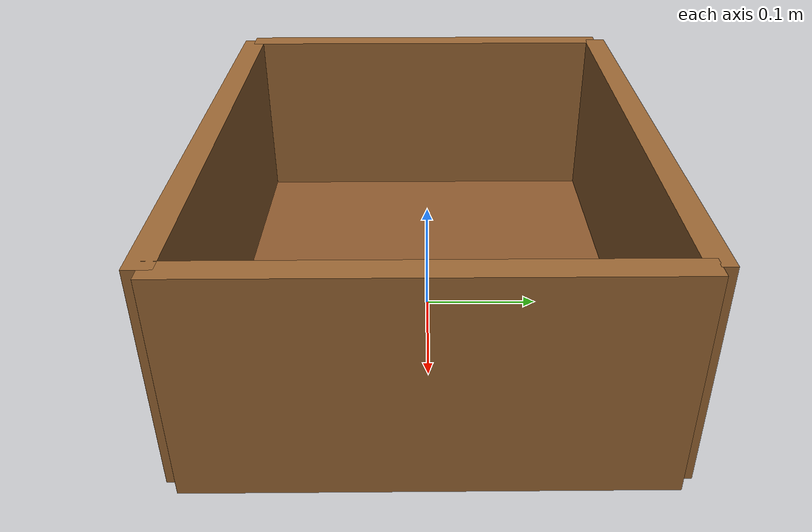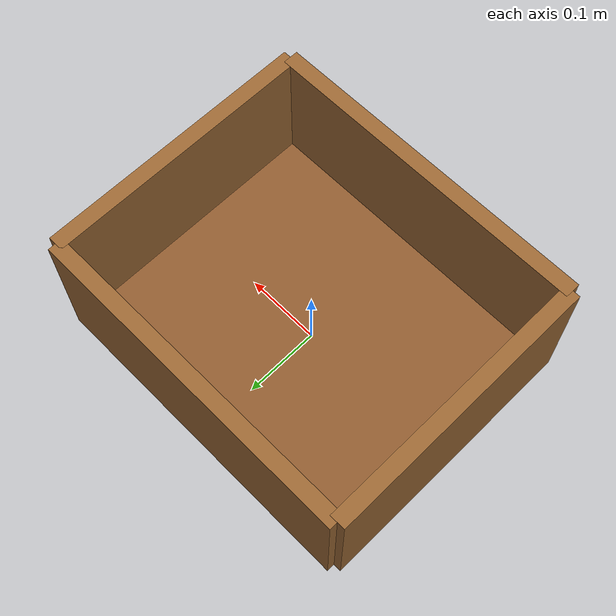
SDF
<?xml version="1.0"?>
<!-- Packing box digital twin: outer L 43 x W 35.5 x H 18.2 cm.
     Open-top box built from 4 walls + floor (2 cm wall thickness).
     Pouches get stacked inside toward the 25-layer target. Static. -->
<sdf version="1.6">
  <model name="packing_box">
    <static>true</static>
    <link name="link">
      <!-- floor -->
      <collision name="floor_col"><pose>0 0 0.01 0 0 0</pose>
        <geometry><box><size>0.43 0.355 0.02</size></box></geometry></collision>
      <visual name="floor_vis"><pose>0 0 0.01 0 0 0</pose>
        <geometry><box><size>0.43 0.355 0.02</size></box></geometry>
        <material><diffuse>0.55 0.35 0.18 1</diffuse></material></visual>
      <!-- +X wall -->
      <collision name="wx1_col"><pose>0.215 0 0.091 0 0 0</pose>
        <geometry><box><size>0.02 0.355 0.182</size></box></geometry></collision>
      <visual name="wx1_vis"><pose>0.215 0 0.091 0 0 0</pose>
        <geometry><box><size>0.02 0.355 0.182</size></box></geometry>
        <material><diffuse>0.60 0.40 0.20 1</diffuse></material></visual>
      <!-- -X wall -->
      <collision name="wx2_col"><pose>-0.215 0 0.091 0 0 0</pose>
        <geometry><box><size>0.02 0.355 0.182</size></box></geometry></collision>
      <visual name="wx2_vis"><pose>-0.215 0 0.091 0 0 0</pose>
        <geometry><box><size>0.02 0.355 0.182</size></box></geometry>
        <material><diffuse>0.60 0.40 0.20 1</diffuse></material></visual>
      <!-- +Y wall -->
      <collision name="wy1_col"><pose>0 0.1775 0.091 0 0 0</pose>
        <geometry><box><size>0.43 0.02 0.182</size></box></geometry></collision>
      <visual name="wy1_vis"><pose>0 0.1775 0.091 0 0 0</pose>
        <geometry><box><size>0.43 0.02 0.182</size></box></geometry>
        <material><diffuse>0.60 0.40 0.20 1</diffuse></material></visual>
      <!-- -Y wall -->
      <collision name="wy2_col"><pose>0 -0.1775 0.091 0 0 0</pose>
        <geometry><box><size>0.43 0.02 0.182</size></box></geometry></collision>
      <visual name="wy2_vis"><pose>0 -0.1775 0.091 0 0 0</pose>
        <geometry><box><size>0.43 0.02 0.182</size></box></geometry>
        <material><diffuse>0.60 0.40 0.20 1</diffuse></material></visual>
    </link>
  </model>
</sdf>
